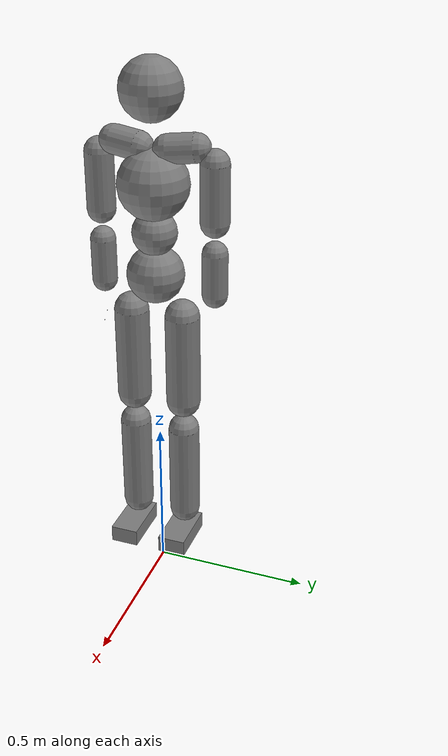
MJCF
<?xml version="1.0" encoding="utf-8"?>
<mujoco>

    <compiler angle="radian" coordinate="local" meshdir="../stls/hand" texturedir="../textures"></compiler>
    <option timestep="0.00555" iterations="20" apirate="200">
        <flag warmstart="enable"></flag>
    </option>

    <size njmax="500" nconmax="100" nuser_jnt="1" nuser_site="1" nuser_tendon="1" nuser_sensor="1" nuser_actuator="16" nstack="600000"></size>

    <visual>
        <map fogstart="3" fogend="5" force="0.1"></map>
        <quality shadowsize="4096"></quality>
    </visual>

    <default>
        <default class="robot0:asset_class">
            <geom friction="1 0.005 0.001" condim="3" margin="0.0005" contype="1" conaffinity="1"></geom>
            <joint limited="true" damping="0.1" armature="0.001" margin="0.01" frictionloss="0.001"></joint>
            <site size="0.005" rgba="0.4 0.9 0.4 1"></site>
            <general ctrllimited="true" forcelimited="true"></general>
        </default>
        <default class="robot0:D_Touch">
            <site type="box" size="0.009 0.004 0.013" pos="0 -0.004 0.018" rgba="0.8 0.8 0.8 0.15" group="4"></site>
        </default>
        <default class="robot0:DC_Hand">
            <geom material="robot0:MatColl" contype="1" conaffinity="0" group="4"></geom>
        </default>
        <default class="robot0:D_Vizual">
            <geom material="robot0:MatViz" contype="0" conaffinity="0" group="1" type="mesh"></geom>
        </default>
        <default class="robot0:free">
            <joint type="free" damping="0" armature="0" limited="false"></joint>
        </default>

        <motor ctrlrange="-1 1" ctrllimited="true"/>
        <default class="body">
          <geom type="capsule" condim="1" friction="1.0 0.05 0.05" solimp=".9 .99 .003" solref=".015 1"/>
          <joint type="hinge" damping="0.1" stiffness="5" armature=".007" limited="true" solimplimit="0 .99 .01"/>
          <site size=".04" group="3"/>
          <default class="force-torque">
            <site type="box" size=".01 .01 .02" rgba="1 0 0 1" />
          </default>
          <default class="touch">
            <site type="capsule" rgba="0 0 1 .3"/>
          </default>
        </default>

    </default>

    <contact>
        <pair geom1="robot0:C_ffdistal" geom2="robot0:C_thdistal" condim="1"></pair>
        <pair geom1="robot0:C_ffmiddle" geom2="robot0:C_thdistal" condim="1"></pair>
        <pair geom1="robot0:C_ffproximal" geom2="robot0:C_thdistal" condim="1"></pair>
        <pair geom1="robot0:C_mfproximal" geom2="robot0:C_thdistal" condim="1"></pair>
        <pair geom1="robot0:C_mfdistal" geom2="robot0:C_thdistal" condim="1"></pair>
        <pair geom1="robot0:C_rfdistal" geom2="robot0:C_thdistal" condim="1"></pair>
        <pair geom1="robot0:C_lfdistal" geom2="robot0:C_thdistal" condim="1"></pair>
        <pair geom1="robot0:C_palm0" geom2="robot0:C_thdistal" condim="1"></pair>
        <pair geom1="robot0:C_mfdistal" geom2="robot0:C_ffdistal" condim="1"></pair>
        <pair geom1="robot0:C_rfdistal" geom2="robot0:C_mfdistal" condim="1"></pair>
        <pair geom1="robot0:C_lfdistal" geom2="robot0:C_rfdistal" condim="1"></pair>
        <pair geom1="robot0:C_mfproximal" geom2="robot0:C_ffproximal" condim="1"></pair>
        <pair geom1="robot0:C_rfproximal" geom2="robot0:C_mfproximal" condim="1"></pair>
        <pair geom1="robot0:C_lfproximal" geom2="robot0:C_rfproximal" condim="1"></pair>
        <pair geom1="robot0:C_lfdistal" geom2="robot0:C_rfdistal" condim="1"></pair>
        <pair geom1="robot0:C_lfdistal" geom2="robot0:C_mfdistal" condim="1"></pair>
        <pair geom1="robot0:C_lfdistal" geom2="robot0:C_rfmiddle" condim="1"></pair>
        <pair geom1="robot0:C_lfmiddle" geom2="robot0:C_rfdistal" condim="1"></pair>
        <pair geom1="robot0:C_lfmiddle" geom2="robot0:C_rfmiddle" condim="1"></pair>
    </contact>

    <tendon>
        <fixed name="robot0:T_FFJ1c" limited="true" range="-0.001 0.001">
            <joint joint="robot0:FFJ0" coef="0.00705"></joint>
            <joint joint="robot0:FFJ1" coef="-0.00805"></joint>
        </fixed>
        <fixed name="robot0:T_MFJ1c" limited="true" range="-0.001 0.001">
            <joint joint="robot0:MFJ0" coef="0.00705"></joint>
            <joint joint="robot0:MFJ1" coef="-0.00805"></joint>
        </fixed>
        <fixed name="robot0:T_RFJ1c" limited="true" range="-0.001 0.001">
            <joint joint="robot0:RFJ0" coef="0.00705"></joint>
            <joint joint="robot0:RFJ1" coef="-0.00805"></joint>
        </fixed>
        <fixed name="robot0:T_LFJ1c" limited="true" range="-0.001 0.001">
            <joint joint="robot0:LFJ0" coef="0.00705"></joint>
            <joint joint="robot0:LFJ1" coef="-0.00805"></joint>
        </fixed>
    </tendon>

    <sensor>
        <jointpos name="robot0:Sjp_FFJ3" joint="robot0:FFJ3"></jointpos>
        <jointpos name="robot0:Sjp_FFJ2" joint="robot0:FFJ2"></jointpos>
        <jointpos name="robot0:Sjp_FFJ1" joint="robot0:FFJ1"></jointpos>
        <jointpos name="robot0:Sjp_FFJ0" joint="robot0:FFJ0"></jointpos>
        <jointpos name="robot0:Sjp_MFJ3" joint="robot0:MFJ3"></jointpos>
        <jointpos name="robot0:Sjp_MFJ2" joint="robot0:MFJ2"></jointpos>
        <jointpos name="robot0:Sjp_MFJ1" joint="robot0:MFJ1"></jointpos>
        <jointpos name="robot0:Sjp_MFJ0" joint="robot0:MFJ0"></jointpos>
        <jointpos name="robot0:Sjp_RFJ3" joint="robot0:RFJ3"></jointpos>
        <jointpos name="robot0:Sjp_RFJ2" joint="robot0:RFJ2"></jointpos>
        <jointpos name="robot0:Sjp_RFJ1" joint="robot0:RFJ1"></jointpos>
        <jointpos name="robot0:Sjp_RFJ0" joint="robot0:RFJ0"></jointpos>
        <jointpos name="robot0:Sjp_LFJ4" joint="robot0:LFJ4"></jointpos>
        <jointpos name="robot0:Sjp_LFJ3" joint="robot0:LFJ3"></jointpos>
        <jointpos name="robot0:Sjp_LFJ2" joint="robot0:LFJ2"></jointpos>
        <jointpos name="robot0:Sjp_LFJ1" joint="robot0:LFJ1"></jointpos>
        <jointpos name="robot0:Sjp_LFJ0" joint="robot0:LFJ0"></jointpos>
        <jointpos name="robot0:Sjp_THJ4" joint="robot0:THJ4"></jointpos>
        <jointpos name="robot0:Sjp_THJ3" joint="robot0:THJ3"></jointpos>
        <jointpos name="robot0:Sjp_THJ2" joint="robot0:THJ2"></jointpos>
        <jointpos name="robot0:Sjp_THJ1" joint="robot0:THJ1"></jointpos>
        <jointpos name="robot0:Sjp_THJ0" joint="robot0:THJ0"></jointpos>
        <touch name="robot0:ST_Tch_fftip" site="robot0:Tch_fftip"></touch>
        <touch name="robot0:ST_Tch_mftip" site="robot0:Tch_mftip"></touch>
        <touch name="robot0:ST_Tch_rftip" site="robot0:Tch_rftip"></touch>
        <touch name="robot0:ST_Tch_lftip" site="robot0:Tch_lftip"></touch>
        <touch name="robot0:ST_Tch_thtip" site="robot0:Tch_thtip"></touch>

        <subtreelinvel name="pelvis_subtreelinvel" body="pelvis"/>
        <accelerometer name="root_accel"    site="root"/>
        <velocimeter name="root_vel"        site="root"/>
        <gyro name="root_gyro"              site="root"/>

        <force name="left_ankle_force"       site="left_ankle"/>
        <force name="right_ankle_force"      site="right_ankle"/>
        <force name="left_knee_force"        site="left_knee"/>
        <force name="right_knee_force"       site="right_knee"/>
        <force name="left_hip_force"         site="left_hip"/>
        <force name="right_hip_force"        site="right_hip"/>

        <torque name="left_ankle_torque"     site="left_ankle"/>
        <torque name="right_ankle_torque"    site="right_ankle"/>
        <torque name="left_knee_torque"      site="left_knee"/>
        <torque name="right_knee_torque"     site="right_knee"/>
        <torque name="left_hip_torque"       site="left_hip"/>
        <torque name="right_hip_torque"      site="right_hip"/>

        <touch name="pelvis_touch"           site="pelvis"/>
        <touch name="upper_waist_touch"      site="upper_waist"/>
        <touch name="torso_touch"            site="torso"/>
        <touch name="head_touch"             site="head"/>
        <touch name="right_upper_arm_touch"  site="right_upper_arm"/>
        <touch name="right_lower_arm_touch"  site="right_lower_arm"/>
        <touch name="left_upper_arm_touch"   site="left_upper_arm"/>
        <touch name="left_lower_arm_touch"   site="left_lower_arm"/>
        <touch name="left_hand_touch"        site="left_hand"/>
        <touch name="right_thigh_touch"      site="right_thigh"/>
        <touch name="right_shin_touch"       site="right_shin"/>
        <touch name="right_foot_touch"       site="right_foot"/>
        <touch name="left_thigh_touch"       site="left_thigh"/>
        <touch name="left_shin_touch"        site="left_shin"/>
        <touch name="left_foot_touch"        site="left_foot"/>

        <jointpos name="robot0:Sjp_WRJ1" joint="robot0:WRJ1"></jointpos>
        <jointpos name="robot0:Sjp_WRJ0" joint="robot0:WRJ0"></jointpos>
    </sensor>

    <actuator>
        <position name="robot0:A_WRJ1" class="robot0:asset_class" user="2038" joint="robot0:WRJ1" ctrlrange="-0.489 0.14" kp="5" forcerange="-4.785 4.785"></position>
        <position name="robot0:A_WRJ0" class="robot0:asset_class" user="2036" joint="robot0:WRJ0" ctrlrange="-0.698 0.489" kp="5" forcerange="-2.175 2.175"></position>

        <position name="robot0:A_FFJ3" class="robot0:asset_class" user="2004" joint="robot0:FFJ3" ctrlrange="-0.349 0.349" kp="1" forcerange="-0.9 0.9"></position>
        <position name="robot0:A_FFJ2" class="robot0:asset_class" user="2002" joint="robot0:FFJ2" ctrlrange="0 1.571" kp="1" forcerange="-0.9 0.9"></position>
        <position name="robot0:A_FFJ1" class="robot0:asset_class" user="2000" joint="robot0:FFJ1" ctrlrange="0 1.571" kp="1" forcerange="-0.7245 0.7245"></position>
        <position name="robot0:A_MFJ3" class="robot0:asset_class" user="2010" joint="robot0:MFJ3" ctrlrange="-0.349 0.349" kp="1" forcerange="-0.9 0.9"></position>
        <position name="robot0:A_MFJ2" class="robot0:asset_class" user="2008" joint="robot0:MFJ2" ctrlrange="0 1.571" kp="1" forcerange="-0.9 0.9"></position>
        <position name="robot0:A_MFJ1" class="robot0:asset_class" user="2006" joint="robot0:MFJ1" ctrlrange="0 1.571" kp="1" forcerange="-0.7245 0.7245"></position>
        <position name="robot0:A_RFJ3" class="robot0:asset_class" user="2016" joint="robot0:RFJ3" ctrlrange="-0.349 0.349" kp="1" forcerange="-0.9 0.9"></position>
        <position name="robot0:A_RFJ2" class="robot0:asset_class" user="2014" joint="robot0:RFJ2" ctrlrange="0 1.571" kp="1" forcerange="-0.9 0.9"></position>
        <position name="robot0:A_RFJ1" class="robot0:asset_class" user="2012" joint="robot0:RFJ1" ctrlrange="0 1.571" kp="1" forcerange="-0.7245 0.7245"></position>
        <position name="robot0:A_LFJ4" class="robot0:asset_class" user="2024" joint="robot0:LFJ4" ctrlrange="0 0.785" kp="1" forcerange="-0.9 0.9"></position>
        <position name="robot0:A_LFJ3" class="robot0:asset_class" user="2022" joint="robot0:LFJ3" ctrlrange="-0.349 0.349" kp="1" forcerange="-0.9 0.9"></position>
        <position name="robot0:A_LFJ2" class="robot0:asset_class" user="2020" joint="robot0:LFJ2" ctrlrange="0 1.571" kp="1" forcerange="-0.9 0.9"></position>
        <position name="robot0:A_LFJ1" class="robot0:asset_class" user="2018" joint="robot0:LFJ1" ctrlrange="0 1.571" kp="1" forcerange="-0.7245 0.7245"></position>
        <position name="robot0:A_THJ4" class="robot0:asset_class" user="2034" joint="robot0:THJ4" ctrlrange="-1.047 1.047" kp="1" forcerange="-2.3722 2.3722"></position>
        <position name="robot0:A_THJ3" class="robot0:asset_class" user="2032" joint="robot0:THJ3" ctrlrange="0 1.222" kp="1" forcerange="-1.45 1.45"></position>
        <position name="robot0:A_THJ2" class="robot0:asset_class" user="2030" joint="robot0:THJ2" ctrlrange="-0.209 0.209" kp="1" forcerange="-0.99 0.99"></position>
        <position name="robot0:A_THJ1" class="robot0:asset_class" user="2028" joint="robot0:THJ1" ctrlrange="-0.524 0.524" kp="1" forcerange="-0.99 0.99"></position>
        <position name="robot0:A_THJ0" class="robot0:asset_class" user="2026" joint="robot0:THJ0" ctrlrange="-1.571 0" kp="1" forcerange="-0.81 0.81"></position>

        <motor name='abdomen_x'       gear='125' joint='abdomen_x'/>
        <motor name='abdomen_y'       gear='125' joint='abdomen_y'/>
        <motor name='abdomen_z'       gear='125' joint='abdomen_z'/>
        <motor name='neck_x'          gear='20' joint='neck_x'/>
        <motor name='neck_y'          gear='20' joint='neck_y'/>
        <motor name='neck_z'          gear='20' joint='neck_z'/>
        <motor name='right_shoulder_x' gear='70' joint='right_shoulder_x'/>
        <motor name='right_shoulder_y' gear='70' joint='right_shoulder_y'/>
        <motor name='right_shoulder_z' gear='70' joint='right_shoulder_z'/>
        <motor name='right_elbow'     gear='60' joint='right_elbow'/>
        <motor name='left_shoulder_x'  gear='70' joint='left_shoulder_x'/>
        <motor name='left_shoulder_y'  gear='70' joint='left_shoulder_y'/>
        <motor name='left_shoulder_z'  gear='70' joint='left_shoulder_z'/>
        <motor name='left_elbow'      gear='60' joint='left_elbow'/>
        <motor name='right_hip_x'     gear='125' joint='right_hip_x'/>
        <motor name='right_hip_z'     gear='125' joint='right_hip_z'/>
        <motor name='right_hip_y'     gear='125' joint='right_hip_y'/>
        <motor name='right_knee'      gear='100' joint='right_knee'/>
        <motor name='right_ankle_x'   gear='50' joint='right_ankle_x'/>
        <motor name='right_ankle_y'   gear='50' joint='right_ankle_y'/>
        <motor name='right_ankle_z'   gear='50' joint='right_ankle_z'/>
        <motor name='left_hip_x'      gear='125' joint='left_hip_x'/>
        <motor name='left_hip_z'      gear='125' joint='left_hip_z'/>
        <motor name='left_hip_y'      gear='125' joint='left_hip_y'/>
        <motor name='left_knee'       gear='100' joint='left_knee'/>
        <motor name='left_ankle_x'    gear='50' joint='left_ankle_x'/>
        <motor name='left_ankle_y'    gear='50' joint='left_ankle_y'/>
        <motor name='left_ankle_z'    gear='50' joint='left_ankle_z'/>
    </actuator>

    <asset>
        <texture type="skybox" builtin="gradient" rgb1="0.44 0.85 0.56" rgb2="0.46 0.87 0.58" width="32" height="32"></texture>
        <texture name="floor_tex" type="2d" file="../textures/texture_background_wall_paint_2.jpg"/>
        <texture name="robot0:texplane" type="2d" builtin="checker" rgb1="0.2 0.3 0.4" rgb2="0.1 0.15 0.2" width="512" height="512"></texture>
        <texture name="robot0:texgeom" type="cube" builtin="flat" mark="cross" width="127" height="127" rgb1="0.3 0.6 0.5" rgb2="0.3 0.6 0.5" markrgb="0 0 0" random="0.01"></texture>

        <material name="robot0:MatGnd" reflectance="0.5" texture="robot0:texplane" texrepeat="1 1" texuniform="true"></material>
        <material name="robot0:MatColl" specular="1" shininess="0.3" reflectance="0.5" rgba="0.4 0.5 0.6 1"></material>
        <material name="robot0:MatViz" specular="0.75" shininess="0.1" reflectance="0.5" rgba="0.93 0.93 0.93 1"></material>
        <material name="robot0:object" texture="robot0:texgeom" texuniform="false"></material>
        <material name="floor_mat" specular="0" shininess="0.5" reflectance="0" rgba="0.2 0.2 0.2 0"></material>

        <mesh name="robot0:palm" scale="0.001 0.001 0.001" file="palm.stl"></mesh>
        <mesh name="robot0:knuckle" scale="0.001 0.001 0.001" file="knuckle.stl"></mesh>
        <mesh name="robot0:F3" scale="0.001 0.001 0.001" file="F3.stl"></mesh>
        <mesh name="robot0:F2" scale="0.001 0.001 0.001" file="F2.stl"></mesh>
        <mesh name="robot0:F1" scale="0.001 0.001 0.001" file="F1.stl"></mesh>
        <mesh name="robot0:lfmetacarpal" scale="0.001 0.001 0.001" file="lfmetacarpal.stl"></mesh>
        <mesh name="robot0:TH3_z" scale="0.001 0.001 0.001" file="TH3_z.stl"></mesh>
        <mesh name="robot0:TH2_z" scale="0.001 0.001 0.001" file="TH2_z.stl"></mesh>
        <mesh name="robot0:TH1_z" scale="0.001 0.001 0.001" file="TH1_z.stl"></mesh>
    </asset>

    <worldbody>
        <geom name="floor" type="plane" conaffinity="1" size="100 100 .2" material="floor_mat" />
    <body name="pelvis" pos="0 0 1" childclass="body">
      <freejoint name="root"/>
      <site name="root" class="force-torque"/>
      <geom name="pelvis" type="sphere" pos="0 0 0.07" size=".09" density="2226"/>
      <geom name="upper_waist" type="sphere" pos="0 0 0.205" size="0.07" density="2226"/>
      <site name="pelvis" class="touch" type="sphere" pos="0 0 0.07" size="0.091"/>
      <site name="upper_waist" class="touch" type="sphere" pos="0 0 0.205" size="0.071"/>

      <body name="torso" pos="0 0 0.236151">
        <light name="top" pos="0 0 2" mode="trackcom"/>
        <camera name="back" pos="-3 0 1" xyaxes="0 -1 0 1 0 2" mode="trackcom"/>
        <camera name="side" pos="0 -3 1" xyaxes="1 0 0 0 1 2" mode="trackcom"/>
        <joint name="abdomen_x" pos="0 0 0" axis="1 0 0" range="-1.047 1.047" stiffness="600" damping="60" armature=".025"/>
        <joint name="abdomen_y" pos="0 0 0" axis="0 1 0" range="-1.047 1.57" stiffness="600" damping="60" armature=".025"/>
        <joint name="abdomen_z" pos="0 0 0" axis="0 0 1" range="-0.873 0.873" stiffness="600" damping="60" armature=".025"/>
        <geom name="torso" type="sphere" pos="0 0 0.12" size="0.11" density="1794"/>
        <site name="torso" class="touch" type="sphere" pos="0 0 0.12" size="0.111"/>

        <geom name="right_clavicle" fromto="-0.0060125 -0.0457775 0.2287955 -0.016835 -0.128177 0.2376182" size=".045" density="1100"/>
        <geom name="left_clavicle" fromto="-0.0060125 0.0457775 0.2287955 -0.016835 0.128177 0.2376182" size=".045" density="1100"/>

        <body name="head" pos="0 0 0.223894">
          <joint name="neck_x" axis="1 0 0" range="-0.873 0.873" stiffness="50" damping="5" armature=".017"/>
          <joint name="neck_y" axis="0 1 0" range="-0.698 1.047" stiffness="50" damping="5" armature=".017"/>
          <joint name="neck_z" axis="0 0 1" range="-0.785 0.785" stiffness="50" damping="5" armature=".017"/>
          <geom name="head" type="sphere" pos="0 0 0.175" size="0.095" density="1081"/>
          <site name="head" class="touch" pos="0 0 0.175" type="sphere" size="0.103"/>
          <camera name="egocentric" pos=".103 0 0.175" xyaxes="0 -1 0 .1 0 1" fovy="80"/>
        </body>

        <body name="right_upper_arm" pos="-0.02405 -0.18311 0.24350">
          <joint name="right_shoulder_x" axis="1 0 0" range="-3.142 0.785" stiffness="200" damping="20" armature=".02"/>
          <joint name="right_shoulder_y" axis="0 1 0" range="-3.142 1.047" stiffness="200" damping="20" armature=".02"/>
          <joint name="right_shoulder_z" axis="0 0 1"  range="-1.57 1.57" stiffness="200" damping="20" armature=".02"/>
          <geom name="right_upper_arm" fromto="0 0 -0.05 0 0 -0.23" size=".045" density="982"/>
          <site name="right_upper_arm" class="touch" pos="0 0 -0.14" size="0.046 0.1" zaxis="0 0 1"/>

          <body name="right_lower_arm" pos="0 0 -0.274788">
            <joint name="right_elbow" axis="0 1 0" range="-2.793 0" stiffness="150" damping="15" armature=".015"/>
            <geom name="right_lower_arm" fromto="0 0 -0.0525 0 0 -0.1875" size="0.04" density="1056"/>
            <site name="right_lower_arm" class="touch" pos="0 0 -0.12" size="0.041 0.0685" zaxis="0 1 0"/>

            <body name="right_hand" pos="0 0 -0.258947" quat="0 1 0 0">
                <inertial mass="0.1" pos="0 0 0" diaginertia="0.001 0.001 0.001"/>
                <body childclass="robot0:asset_class" name="robot0:palm" pos="0 0 0" euler="0 0 0">
                    <inertial pos="0.006 0 0.036" quat="0.715833 0.0439898 0.0749825 0.692839" mass="0.3" diaginertia="0.001 0.001 0.001" />
                    <joint name="robot0:WRJ2" type="hinge" pos="0 0 0" axis="0 0 1" range="-0 0.00000001" damping="0.5" armature="0.005" user="1122"/>
                    <joint name="robot0:WRJ1" type="hinge" pos="0 0 0" axis="0 1 0" range="-0.523599 0.174533" damping="0.5" armature="0.005" user="1123"/>
                    <joint name="robot0:WRJ0" type="hinge" pos="0 0 0" axis="1 0 0" range="-0.698132 0.488692" damping="0.5" armature="0.005" user="1122"/>
                    <geom name="robot0:C_palm0" class="robot0:DC_Hand" size="0.032 0.0111 0.049" pos="0.011 0 0.038" type="box" rgba="0.4 0.5 0.6 0.1" />
                    <geom name="robot0:C_palm1" class="robot0:DC_Hand" size="0.011 0.0111 0.025" pos="-0.032 0 0.014" type="box" rgba="0.4 0.5 0.6 0.1" />
                    <body name="robot0:ffknuckle" pos="0.036 -0.004 0.090">
                        <inertial pos="0 0 0" quat="0.520062 0.854102 0.00600072 -0.00300036" mass="0.008" diaginertia="1e-05 1e-05 1e-05" />
                        <joint name="robot0:FFJ3" pos="0 0 0" axis="0 1 0" range="-0.349 0.349" user="1103" />
                        <body name="robot0:ffproximal" pos="0 0 0">
                            <inertial pos="0 0 0.023" quat="0.707095 -0.00400054 0.00400054 0.707095" mass="0.014" diaginertia="1e-05 1e-05 1e-05" />
                            <joint name="robot0:FFJ2" pos="0 0 0" axis="1 0 0" range="0 1.571" user="1102" />
                            <geom name="robot0:C_ffproximal" class="robot0:DC_Hand" size="0.01 0.0175" pos="0 0 0.0175" type="capsule" />
                            <body name="robot0:ffmiddle" pos="0 0 0.035">
                                <inertial pos="0 0 0.011" quat="0.707107 0 0 0.707107" mass="0.012" diaginertia="1e-05 1e-05 1e-05" />
                                <joint name="robot0:FFJ1" pos="0 0 0" axis="1 0 0" range="0 1.571" user="1101" />
                                <geom name="robot0:C_ffmiddle" class="robot0:DC_Hand" size="0.00805 0.0125" pos="0 0 0.0125" type="capsule" />
                                <body name="robot0:ffdistal" pos="0 0 0.025">
                                    <inertial pos="0 0 0.015" quat="0.7071 -0.00300043 0.00300043 0.7071" mass="0.01" diaginertia="1e-05 1e-05 1e-05" />
                                    <joint name="robot0:FFJ0" pos="0 0 0" axis="1 0 0" range="0 1.571" user="1100" />
                                    <geom name="robot0:C_ffdistal" class="robot0:DC_Hand" size="0.00705 0.012" pos="0 0 0.012" type="capsule" condim="4" />
                                    <site name="robot0:S_fftip" pos="0 0 0.026" group="3" />
                                    <site name="robot0:Tch_fftip" class="robot0:D_Touch" pos="0 -0.004 0.018" />
                                </body>
                            </body>
                        </body>
                    </body>
                    <body name="robot0:mfknuckle" pos="0.011 0 0.099">
                        <inertial pos="0 0 0" quat="0.520062 0.854102 0.00600072 -0.00300036" mass="0.008" diaginertia="1e-05 1e-05 1e-05" />
                        <joint name="robot0:MFJ3" pos="0 0 0" axis="0 1 0" range="-0.349 0.349" user="1107" />
                        <body name="robot0:mfproximal" pos="0 0 0">
                            <inertial pos="0 0 0.023" quat="0.707095 -0.00400054 0.00400054 0.707095" mass="0.014" diaginertia="1e-05 1e-05 1e-05" />
                            <joint name="robot0:MFJ2" pos="0 0 0" axis="1 0 0" range="0 1.571" user="1106" />
                            <geom name="robot0:C_mfproximal" class="robot0:DC_Hand" size="0.01 0.0175" pos="0 0 0.0135" type="capsule" />
                            <body name="robot0:mfmiddle" pos="0 0 0.035">
                                <inertial pos="0 0 0.012" quat="0.707107 0 0 0.707107" mass="0.012" diaginertia="1e-05 1e-05 1e-05" />
                                <joint name="robot0:MFJ1" pos="0 0 0" axis="1 0 0" range="0 1.571" user="1105" />
                                <geom name="robot0:C_mfmiddle" class="robot0:DC_Hand" size="0.00805 0.0125" pos="0 0 0.0125" type="capsule" />
                                <body name="robot0:mfdistal" pos="0 0 0.025">
                                    <inertial pos="0 0 0.015" quat="0.7071 -0.00300043 0.00300043 0.7071" mass="0.01" diaginertia="1e-05 1e-05 1e-05" />
                                    <joint name="robot0:MFJ0" pos="0 0 0" axis="1 0 0" range="0 1.571" user="1104" />
                                    <geom name="robot0:C_mfdistal" class="robot0:DC_Hand" size="0.00705 0.012" pos="0 0 0.012" type="capsule" condim="4" />
                                    <site name="robot0:S_mftip" pos="0 0 0.026" group="3" />
                                    <site name="robot0:Tch_mftip" class="robot0:D_Touch" pos="0 -0.004 0.018" />
                                </body>
                            </body>
                        </body>
                    </body>
                    <body name="robot0:rfknuckle" pos="-0.012 -0.004 0.090">
                        <inertial pos="0 0 0" quat="0.520062 0.854102 0.00600072 -0.00300036" mass="0.008" diaginertia="1e-05 1e-05 1e-05" />
                        <joint name="robot0:RFJ3" pos="0 0 0" axis="0 1 0" range="-0.349 0.349" user="1111" />
                        <body name="robot0:rfproximal" pos="0 0 0">
                            <inertial pos="0 0 0.023" quat="0.707095 -0.00400054 0.00400054 0.707095" mass="0.014" diaginertia="1e-05 1e-05 1e-05" />
                            <joint name="robot0:RFJ2" pos="0 0 0" axis="1 0 0" range="0 1.571" user="1110" />
                            <geom name="robot0:C_rfproximal" class="robot0:DC_Hand" size="0.01 0.0175" pos="0 0 0.0175" type="capsule" />
                            <body name="robot0:rfmiddle" pos="0 0 0.033">
                                <inertial pos="0 0 0.012" quat="0.707107 0 0 0.707107" mass="0.012" diaginertia="1e-05 1e-05 1e-05" />
                                <joint name="robot0:RFJ1" pos="0 0 0" axis="1 0 0" range="0 1.571" user="1109" />
                                <geom name="robot0:C_rfmiddle" class="robot0:DC_Hand" size="0.00805 0.0125" pos="0 0 0.0125" type="capsule" />
                                <body name="robot0:rfdistal" pos="0 0 0.025">
                                    <inertial pos="0 0 0.015" quat="0.7071 -0.00300043 0.00300043 0.7071" mass="0.01" diaginertia="1e-05 1e-05 1e-05" />
                                    <joint name="robot0:RFJ0" pos="0 0 0" axis="1 0 0" range="0 1.571" user="1108" />
                                    <geom name="robot0:C_rfdistal" class="robot0:DC_Hand" size="0.00705 0.012" pos="0 0 0.012" type="capsule" condim="4" />
                                    <site name="robot0:S_rftip" pos="0 0 0.026" group="3" />
                                    <site name="robot0:Tch_rftip" class="robot0:D_Touch" pos="0 -0.004 0.018" />
                                </body>
                            </body>
                        </body>
                    </body>
                    <body name="robot0:lfmetacarpal" pos="-0.017 0 0.044">
                        <inertial pos="-0.014 0.001 0.014" quat="0.709167 -0.0920216 -0.0630148 0.696164" mass="0.075" diaginertia="1e-05 1e-05 1e-05" />
                        <joint name="robot0:LFJ4" pos="0 0 0" axis="0.570977 0 0.820966" range="0 0.785" user="1116" />
                        <geom name="robot0:C_lfmetacarpal" class="robot0:DC_Hand" size="0.0095 0.0111 0.025" pos="-0.0165 0 0.01" type="box" rgba="0.4 0.5 0.6 0.2" />
                        <body name="robot0:lfknuckle" pos="-0.017 -0.008 0.035">
                            <inertial pos="0 0 0" quat="0.520062 0.854102 0.00600072 -0.00300036" mass="0.008" diaginertia="1e-05 1e-05 1e-05" />
                            <joint name="robot0:LFJ3" pos="0 0 0" axis="0 1 0" range="-0.45 0.349" user="1115" />
                            <body name="robot0:lfproximal" pos="0 0 0">
                                <inertial pos="0 0 0.023" quat="0.707095 -0.00400054 0.00400054 0.707095" mass="0.014" diaginertia="1e-05 1e-05 1e-05" />
                                <joint name="robot0:LFJ2" pos="0 0 0" axis="1 0 0" range="0 1.571" user="1114" />
                                <geom name="robot0:C_lfproximal" class="robot0:DC_Hand" size="0.01 0.0138" pos="0 0 0.0175" type="capsule" />
                                <body name="robot0:lfmiddle" pos="0 0 0.025">
                                    <inertial pos="0 0 0.012" quat="0.707107 0 0 0.707107" mass="0.012" diaginertia="1e-05 1e-05 1e-05" />
                                    <joint name="robot0:LFJ1" pos="0 0 0" axis="1 0 0" range="0 1.571" user="1113" />
                                    <geom name="robot0:C_lfmiddle" class="robot0:DC_Hand" size="0.00805 0.0125" pos="0 0 0.0125" type="capsule" />
                                    <body name="robot0:lfdistal" pos="0 0 0.020">
                                        <inertial pos="0 0 0.015" quat="0.7071 -0.00300043 0.00300043 0.7071" mass="0.01" diaginertia="1e-05 1e-05 1e-05" />
                                        <joint name="robot0:LFJ0" pos="0 0 0" axis="1 0 0" range="0 1.571" user="1112" />
                                        <geom name="robot0:C_lfdistal" class="robot0:DC_Hand" size="0.00705 0.012" pos="0 0 0.012" type="capsule" condim="4" />
                                        <site name="robot0:S_lftip" pos="0 0 0.026" group="3" />
                                        <site name="robot0:Tch_lftip" class="robot0:D_Touch" pos="0 -0.004 0.018" />
                                    </body>
                                </body>
                            </body>
                        </body>
                    </body>
                    <body name="robot0:thbase" pos="0.031 -0.017 0.023" quat="0.923956 0 0.382499 0">
                        <inertial pos="0 0 0" mass="0.01" diaginertia="1e-05 1e-05 1e-05" />
                        <joint name="robot0:THJ4" pos="0 0 0" axis="0 0 -1" range="-1.047 1.047" user="1121" />
                        <geom name="robot0:V_thbase" size="0.001 0.001 0.001" type="box" group="1" />
                        <body name="robot0:thproximal" pos="0 0 0">
                            <inertial pos="0 0 0.017" quat="0.981604 0 0.000999597 0.190923" mass="0.016" diaginertia="1e-05 1e-05 1e-05" />
                            <joint name="robot0:THJ3" pos="0 0 0" axis="1 0 0" range="0 1.222" user="1120" />
                            <geom name="robot0:C_thproximal" class="robot0:DC_Hand" size="0.013 0.019" pos="0 0 0.019" type="capsule" rgba="0.4 0.5 0.6 0.1" />
                            <body name="robot0:thhub" pos="0 0 0.032">
                                <inertial pos="0 0 0" mass="0.002" diaginertia="1e-05 1e-05 1e-05" />
                                <joint name="robot0:THJ2" pos="0 0 0" axis="1 0 0" range="-0.209 0.209" user="1119" />
                                <geom name="robot0:V_thhub" size="0.001 0.001 0.001" type="box" group="1" />
                                <body name="robot0:thmiddle" pos="0 0 0">
                                    <inertial pos="0 0 0.016" quat="0.999971 -0.000999971 -0.00699979 0.00299991" mass="0.016" diaginertia="1e-05 1e-05 1e-05" />
                                    <joint name="robot0:THJ1" pos="0 0 0" axis="0 1 0" range="-0.524 0.524" user="1118" />
                                    <geom name="robot0:C_thmiddle" class="robot0:DC_Hand" size="0.011 0.016" pos="0 0 0.016" type="capsule" />
                                    <body name="robot0:thdistal" pos="0 -0.004 0.028">
                                        <inertial pos="0 0 0.016" quat="0.99887 -0.00499935 -0.0469939 0.00499935" mass="0.016" diaginertia="1e-05 1e-05 1e-05" />
                                        <joint name="robot0:THJ0" pos="0 0 0" axis="0 1 0" range="-1.571 0" user="1117" />
                                        <geom name="robot0:C_thdistal" class="robot0:DC_Hand" size="0.00918 0.013" pos="0 0.004 0.013" type="capsule" condim="4" />
                                        <site name="robot0:S_thtip" pos="0 0.004 0.0275" group="3" />
                                        <site name="robot0:Tch_thtip" class="robot0:D_Touch" pos="-0.005 0 0.02" size="0.005 0.011 0.016" />
                                    </body>
                                </body>
                            </body>
                        </body>
                    </body>
                </body>
            </body>

          </body>
        </body>

        <body name="left_upper_arm" pos="-0.02405 0.18311 0.24350">
          <joint name="left_shoulder_x" axis="1 0 0" range="-0.783 3.142" stiffness="200" damping="20" armature=".02"/>
          <joint name="left_shoulder_y" axis="0 1 0" range="-3.142 1.047" stiffness="200" damping="20" armature=".02"/>
          <joint name="left_shoulder_z" axis="0 0 1"  range="-1.57 1.57" stiffness="200" damping="20" armature=".02"/>
          <geom name="left_upper_arm" fromto="0 0 -0.05 0 0 -0.23" size="0.045" density="982"/>
          <site name="left_upper_arm" class="touch" pos="0 0 -0.14" size="0.046 0.1" zaxis="0 0 1"/>

          <body name="left_lower_arm" pos="0 0 -0.274788">
            <joint name="left_elbow" axis="0 1 0" range="-2.793 0" stiffness="150" damping="15" armature=".015"/>
            <geom name="left_lower_arm" fromto="0 0 -0.0525 0 0 -0.1875" size="0.04" density="1056"/>
            <site name="left_lower_arm" class="touch" pos="0 0 -0.1" size="0.041 0.0685" zaxis="0 0 1"/>

            <body name="left_hand" pos="0 0 -0.258947" quat="0 1 0 0">
                <site name="left_hand" class="touch" type="sphere" size=".041"/>
                <geom name="robot0:C_palm0_l" class="robot0:DC_Hand" size="0.032 0.0111 0.049" pos="0.011 0 0.038" type="box" rgba="0.4 0.5 0.6 0.1" />
                <geom name="robot0:C_palm1_l" class="robot0:DC_Hand" size="0.011 0.0111 0.025" pos="-0.032 0 0.014" type="box" rgba="0.4 0.5 0.6 0.1" />
                <geom name="robot0:C_ffproximal_l" class="robot0:DC_Hand" size="0.01 0.0175" pos="0.036 0.004 0.1075" type="capsule" />
                <geom name="robot0:C_ffmiddle_l" class="robot0:DC_Hand" size="0.00805 0.0125" pos="0.036 0.004 0.1375" type="capsule" />
                <geom name="robot0:C_ffdistal_l" class="robot0:DC_Hand" size="0.00705 0.012" pos="0.036 0.004 0.162" type="capsule" condim="4" />

                <geom name="robot0:C_mfproximal_l" class="robot0:DC_Hand" size="0.01 0.0175" pos="0.011 0 0.1125" type="capsule" />
                <geom name="robot0:C_mfmiddle_l" class="robot0:DC_Hand" size="0.00805 0.0125" pos="0.011 0 0.1465" type="capsule" />
                <geom name="robot0:C_mfdistal_l" class="robot0:DC_Hand" size="0.00705 0.012" pos="0.011 0 0.171" type="capsule" condim="4" />

                <geom name="robot0:C_rfproximal_l" class="robot0:DC_Hand" size="0.01 0.0175" pos="-0.012 0.004 0.1075" type="capsule" />
                <geom name="robot0:C_rfmiddle_l" class="robot0:DC_Hand" size="0.00805 0.0125" pos="-0.012 0.004 0.1355" type="capsule" />
                <geom name="robot0:C_rfdistal_l" class="robot0:DC_Hand" size="0.00705 0.012" pos="-0.012 0.004 0.16" type="capsule" condim="4" />

                <geom name="robot0:C_lfmetacarpal_l" class="robot0:DC_Hand" size="0.0095 0.0111 0.025" pos="-0.0335 0 0.054" type="box" rgba="0.4 0.5 0.6 0.2" />
                <geom name="robot0:C_lfproximal_l" class="robot0:DC_Hand" size="0.01 0.0138" pos="-0.034 0.008 0.0965" type="capsule" />
                <geom name="robot0:C_lfmiddle_l" class="robot0:DC_Hand" size="0.00805 0.0125" pos="-0.034 0.008 0.1165" type="capsule" />
                <geom name="robot0:C_lfdistal_l" class="robot0:DC_Hand" size="0.00705 0.012" pos="-0.034 0.008 0.136" type="capsule" condim="4" />

                <geom name="robot0:C_thproximal_l" class="robot0:DC_Hand" size="0.013 0.019" pos="0.044 0.017 0.036" type="capsule" rgba="0.4 0.5 0.6 0.1" quat="0.923956 0 0.382499 0"/>
                <geom name="robot0:C_thmiddle_l" class="robot0:DC_Hand" size="0.011 0.016" pos="0.065 0.017 0.057" type="capsule" quat="0.923956 0 0.382499 0"/>
                <geom name="robot0:C_thdistal_l" class="robot0:DC_Hand" size="0.00918 0.013" pos="0.082 0.017 0.075" type="capsule" condim="4" quat="0.923956 0 0.382499 0"/>
            </body>
          </body>
        </body>
      </body>

      <body name="right_thigh" pos="0 -0.084887 0">
        <site name="right_hip" class="force-torque"/>
        <joint name="right_hip_x" axis="1 0 0" range="-1.047 0.262" stiffness="300" damping="30" armature=".02"/>
        <joint name="right_hip_y" axis="0 1 0" range="-2.443 1.047" stiffness="300" damping="30" armature=".02"/>
        <joint name="right_hip_z" axis="0 0 1" range="-1.047 0.611" stiffness="300" damping="30" armature=".02"/>
        <geom name="right_thigh" fromto="0 0 -0.06 0 0 -0.36" size="0.055" density="1269"/>
        <site name="right_thigh" class="touch" pos="0 0 -0.21" size="0.056 0.301" zaxis="0 0 -1"/>

        <body name="right_shin" pos="0 0 -0.421546">
          <site name="right_knee" class="force-torque" pos="0 0 0"/>
          <joint name="right_knee" pos="0 0 0" axis="0 1 0" range="0 2.793" stiffness="300" damping="30" armature=".02"/>
          <geom name="right_shin" fromto="0 0 -0.045 0 0 -0.355"  size=".05" density="1014"/>
          <site name="right_shin" class="touch" pos="0 0 -0.2" size="0.051 0.156" zaxis="0 0 -1"/>

          <body name="right_foot" pos="0 0 -0.409870">
            <site name="right_ankle" class="force-torque"/>
            <joint name="right_ankle_x" pos="0 0 0" axis="1 0 0" range="-0.524 0.524" stiffness="200" damping="20" armature=".01"/>
            <joint name="right_ankle_y" pos="0 0 0" axis="0 1 0" range="-0.960 0.960" stiffness="200" damping="20" armature=".01"/>
            <joint name="right_ankle_z" pos="0 0 0" axis="0 0 1" range="-0.698 0.698" stiffness="200" damping="20" armature=".01"/>
            <geom name="right_foot" type="box" pos="0.045 0 -0.0225" size="0.0885 0.045 0.0275" density="1141"/>
            <site name="right_foot" class="touch" type="box" pos="0.045 0 -0.0225" size="0.0895 0.055 0.0285"/>
          </body>
        </body>
      </body>

      <body name="left_thigh" pos="0 0.084887 0">
        <site name="left_hip" class="force-torque"/>
        <joint name="left_hip_x" axis="1 0 0" range="-0.262 1.047" stiffness="300" damping="30" armature=".02"/>
        <joint name="left_hip_y" axis="0 1 0" range="-2.443 1.047" stiffness="300" damping="30" armature=".02"/>
        <joint name="left_hip_z" axis="0 0 1" range="-0.611 1.047" stiffness="300" damping="30" armature=".02"/>
        <geom name="left_thigh" fromto="0 0 -0.06 0 0 -0.36" size=".055" density="1269"/>
        <site name="left_thigh" class="touch" pos="0 0 -0.21" size="0.056 0.301" zaxis="0 0 -1"/>

        <body name="left_shin" pos="0 0 -0.421546">
          <site name="left_knee" class="force-torque" pos="0 0 .02"/>
          <joint name="left_knee" pos="0 0 0" axis="0 1 0" range="0 2.793" stiffness="300" damping="30" armature=".02"/>
          <geom name="left_shin" fromto="0 0 -0.045 0 0 -0.355"  size=".05" density="1014"/>
          <site name="left_shin" class="touch" pos="0 0 -0.2" size="0.051 0.156" zaxis="0 0 -1"/>

          <body name="left_foot" pos="0 0 -0.409870">
            <site name="left_ankle" class="force-torque"/>
            <joint name="left_ankle_x" pos="0 0 0" axis="1 0 0" range="-0.524 0.524" stiffness="200" damping="20" armature=".01"/>
            <joint name="left_ankle_y" pos="0 0 0" axis="0 1 0" range="-0.960 0.960" stiffness="200" damping="20" armature=".01"/>
            <joint name="left_ankle_z" pos="0 0 0" axis="0 0 1" range="-0.698 0.698" stiffness="200" damping="20" armature=".01"/>
            <geom name="left_foot" type="box" pos="0.045 0 -0.0225" size="0.0885 0.045 0.0275" density="1141"/>
            <site name="left_foot" class="touch" type="box" pos="0.045 0 -0.0225" size="0.0895 0.055 0.0285"/>
          </body>
        </body>
      </body>
    </body>

        <light directional="true" ambient="0.2 0.2 0.2" diffuse="0.8 0.8 0.8" specular="0.3 0.3 0.3" castshadow="false" pos="0 1 4" dir="0 0 -1" name="light0"></light>
    </worldbody>
</mujoco>
